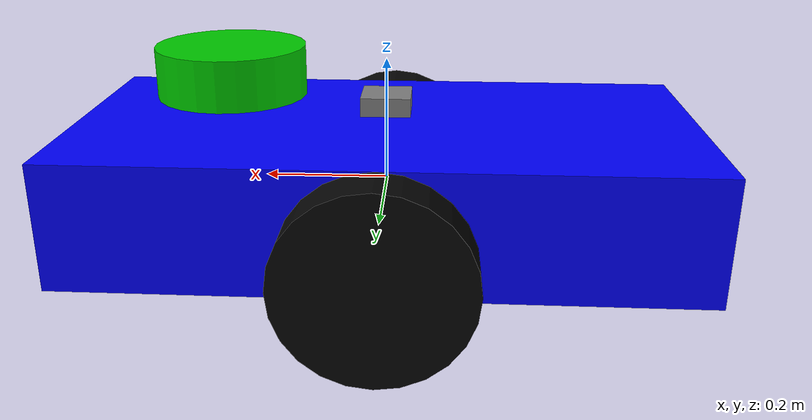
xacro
<?xml version="1.0"?>

<robot name="mobile_robot"
       xmlns:xacro="http://www.ros.org/wiki/xacro">

  <xacro:arg name="robot_name" default="mobile_robot"/>
  <xacro:arg name="topic_prefix" default=""/>

  <!-- Properties                -->

  <xacro:property name="base_length" value="1.0"/>
  <xacro:property name="base_width"  value="0.5"/>
  <xacro:property name="base_height" value="0.2"/>
  <xacro:property name="base_mass"   value="5.0"/>

  <xacro:property name="wheel_radius" value="0.15"/>
  <xacro:property name="wheel_width"  value="0.08"/>
  <xacro:property name="wheel_y"      value="0.29"/>
  <xacro:property name="wheel_z"      value="-0.05"/>
  <xacro:property name="wheel_x"      value="0.0"/>

  <xacro:property name="front_caster_radius" value="0.04"/>
  <xacro:property name="front_caster_x" value="0.45"/>
  <xacro:property name="front_caster_z" value="-0.1"/>

  <xacro:property name="caster_radius" value="0.08"/>
  <xacro:property name="caster_x"      value="-0.35"/>
  <xacro:property name="caster_z"      value="-0.10"/>

  <xacro:property name="lidar_radius" value="0.12"/>
  <xacro:property name="lidar_height" value="0.08"/>
  <xacro:property name="lidar_x"      value="0.25"/>
  <xacro:property name="lidar_z"      value="0.18"/>

  <!-- Materials                 -->

  <material name="blue">
    <color rgba="0.0 0.0 1.0 1.0"/>
  </material>

  <material name="black">
    <color rgba="0.02 0.02 0.02 1.0"/>
  </material>

  <material name="gray">
    <color rgba="0.5 0.5 0.5 1.0"/>
  </material>

  <material name="green">
    <color rgba="0.0 0.8 0.0 1.0"/>
  </material>

  <!-- Macros                    -->

  <xacro:macro name="box_inertia" params="mass x y z">
    <inertial>
      <mass value="${mass}"/>
      <inertia
        ixx="${mass / 12.0 * (y*y + z*z)}"
        ixy="0.0"
        ixz="0.0"
        iyy="${mass / 12.0 * (x*x + z*z)}"
        iyz="0.0"
        izz="${mass / 12.0 * (x*x + y*y)}"/>
    </inertial>
  </xacro:macro>

  <xacro:macro name="wheel" params="prefix y">
    <link name="${prefix}_wheel_link">

      <visual>
        <origin xyz="0 0 0" rpy="1.5708 0 0"/>
        <geometry>
          <cylinder radius="${wheel_radius}" length="${wheel_width}"/>
        </geometry>
        <material name="black"/>
      </visual>

      <collision>
        <origin xyz="0 0 0" rpy="1.5708 0 0"/>
        <geometry>
          <cylinder radius="${wheel_radius}" length="${wheel_width}"/>
        </geometry>
      </collision>

      <inertial>
        <mass value="0.5"/>
        <inertia
          ixx="0.005"
          ixy="0.0"
          ixz="0.0"
          iyy="0.005"
          iyz="0.0"
          izz="0.005"/>
      </inertial>

    </link>

    <joint name="${prefix}_wheel_joint" type="continuous">
      <parent link="base_link"/>
      <child link="${prefix}_wheel_link"/>
      <origin xyz="${wheel_x} ${y} ${wheel_z}" rpy="0 0 0"/>
      <axis xyz="0 1 0"/>
    </joint>
  </xacro:macro>

  <!-- Base                      -->

  <link name="base_link">

    <visual>
      <geometry>
        <box size="${base_length} ${base_width} ${base_height}"/>
      </geometry>
      <material name="blue"/>
    </visual>

    <collision>
      <geometry>
        <box size="${base_length} ${base_width} ${base_height}"/>
      </geometry>
    </collision>

    <xacro:box_inertia
      mass="${base_mass}"
      x="${base_length}"
      y="${base_width}"
      z="${base_height}"/>

  </link>

  <!-- Wheels                    -->

  <xacro:wheel prefix="left"  y="${wheel_y}"/>
  <xacro:wheel prefix="right" y="${-wheel_y}"/>

  <!-- Caster wheel              -->

  <link name="caster_wheel_link">

    <visual>
      <geometry>
        <sphere radius="${caster_radius}"/>
      </geometry>
      <material name="gray"/>
    </visual>

    <collision>
      <geometry>
        <sphere radius="${caster_radius}"/>
      </geometry>
    </collision>

    <inertial>
      <mass value="0.2"/>
      <inertia
        ixx="0.001"
        ixy="0.0"
        ixz="0.0"
        iyy="0.001"
        iyz="0.0"
        izz="0.001"/>
    </inertial>

  </link>

  <joint name="caster_wheel_joint" type="continuous">
    <parent link="base_link"/>
    <child link="caster_wheel_link"/>
    <origin xyz="${caster_x} 0 ${caster_z}" rpy="0 0 0"/>
    <axis xyz="0 0 1"/>
    <dynamics damping="0.0" friction="0.0"/>
  </joint>

  <link name="front_support_link">
    <visual>
      <geometry>
        <sphere radius="${front_caster_radius}"/>
      </geometry>
      <material name="gray"/>
    </visual>

    <collision>
      <geometry>
        <sphere radius="${front_caster_radius}"/>
      </geometry>
    </collision>

    <inertial>
      <mass value="0.05"/>
      <inertia
        ixx="0.00003"
        ixy="0.0"
        ixz="0.0"
        iyy="0.00003"
        iyz="0.0"
        izz="0.00003"/>
    </inertial>
  </link>

  <joint name="front_support_joint" type="continuous">
    <parent link="base_link"/>
    <child link="front_support_link"/>
    <origin
      xyz="${front_caster_x} 0 ${front_caster_z}"
      rpy="0 0 0"/>
    <axis xyz="0 0 1"/>
    <dynamics damping="0.0" friction="0.0"/>
  </joint>

  <gazebo reference="front_support_link">
    <mu1>0.01</mu1>
    <mu2>0.01</mu2>
  </gazebo>

  <gazebo reference="left_wheel_link">
    <mu1>1.2</mu1>
    <mu2>1.2</mu2>
  </gazebo>

  <gazebo reference="right_wheel_link">
    <mu1>1.2</mu1>
    <mu2>1.2</mu2>
  </gazebo>

  <!-- Lidar                     -->

  <link name="lidar_link">

    <visual>
      <geometry>
        <cylinder radius="${lidar_radius}" length="${lidar_height}"/>
      </geometry>
      <material name="green"/>
    </visual>

    <collision>
      <geometry>
        <cylinder radius="${lidar_radius}" length="${lidar_height}"/>
      </geometry>
    </collision>

    <inertial>
      <mass value="0.2"/>
      <inertia
        ixx="0.001"
        ixy="0.0"
        ixz="0.0"
        iyy="0.001"
        iyz="0.0"
        izz="0.001"/>
    </inertial>

  </link>

  <joint name="lidar_joint" type="fixed">
    <parent link="base_link"/>
    <child link="lidar_link"/>
    <origin xyz="${lidar_x} 0 ${lidar_z}" rpy="0 0 0"/>
  </joint>

  <!-- Gazebo Diff Drive         -->

  <gazebo>
    <plugin
      filename="gz-sim-diff-drive-system"
      name="gz::sim::systems::DiffDrive">

      <left_joint>left_wheel_joint</left_joint>
      <right_joint>right_wheel_joint</right_joint>

      <wheel_separation>${2.0 * wheel_y}</wheel_separation>
      <wheel_radius>${wheel_radius}</wheel_radius>

      <topic>$(arg topic_prefix)/cmd_vel</topic>
      <odom_topic>$(arg topic_prefix)/odom</odom_topic>
      <tf_topic>$(arg topic_prefix)/tf</tf_topic>

      <frame_id>odom</frame_id>
      <child_frame_id>base_link</child_frame_id>

      <odom_publish_frequency>30</odom_publish_frequency>

    </plugin>
  </gazebo>

  <!-- Gazebo Lidar Sensor       -->

  <gazebo reference="lidar_link">
    <sensor name="lidar_sensor" type="gpu_lidar">
      <gz_frame_id>$(arg robot_name)/base_link/lidar_sensor</gz_frame_id>
      <pose>0 0 0 0 0 0</pose>
      <always_on>true</always_on>
      <update_rate>10</update_rate>
      <topic>$(arg topic_prefix)/scan</topic>
      <visualize>true</visualize>

      <ray>
        <scan>
          <horizontal>
            <samples>360</samples>
            <resolution>1</resolution>
            <min_angle>-3.14159</min_angle>
            <max_angle>3.14159</max_angle>
          </horizontal>
        </scan>

        <range>
          <min>0.12</min>
          <max>8.0</max>
          <resolution>0.01</resolution>
        </range>

        <noise>
          <type>gaussian</type>
          <mean>0.0</mean>
          <stddev>0.01</stddev>
        </noise>
      </ray>
    </sensor>
  </gazebo>

  <!-- IMU                       -->

  <link name="imu_link">
    <visual>
      <geometry>
        <box size="0.08 0.08 0.03"/>
      </geometry>
      <material name="gray"/>
    </visual>
  </link>

  <joint name="imu_joint" type="fixed">
    <parent link="base_link"/>
    <child link="imu_link"/>
    <origin xyz="0 0 0.13" rpy="0 0 0"/>
  </joint>

  <gazebo reference="imu_link">
    <sensor name="imu_sensor" type="imu">
      <pose>0 0 0 0 0 0</pose>
      <always_on>true</always_on>
      <update_rate>50</update_rate>
      <topic>$(arg topic_prefix)/imu</topic>
    </sensor>
  </gazebo>

</robot>
